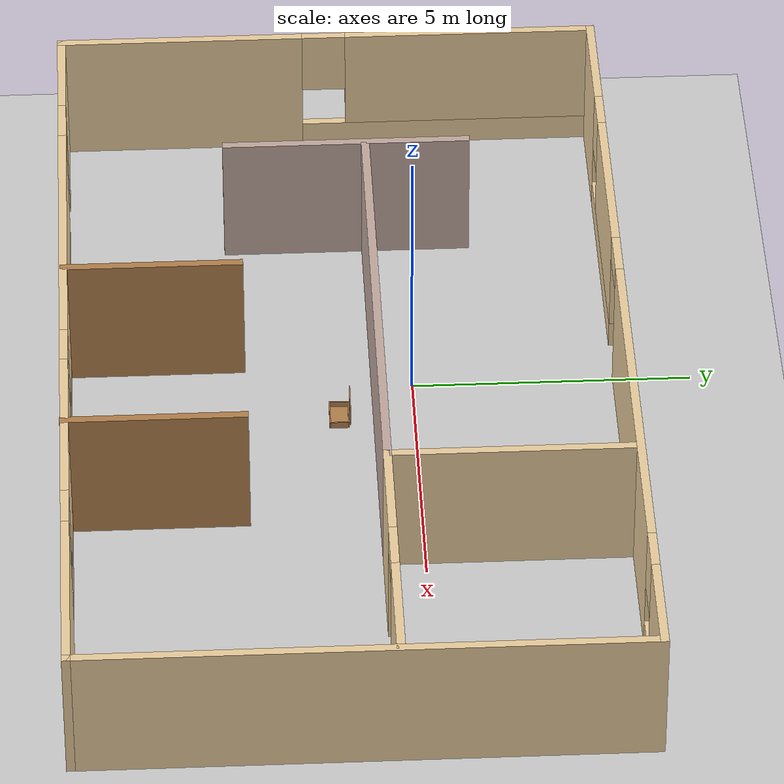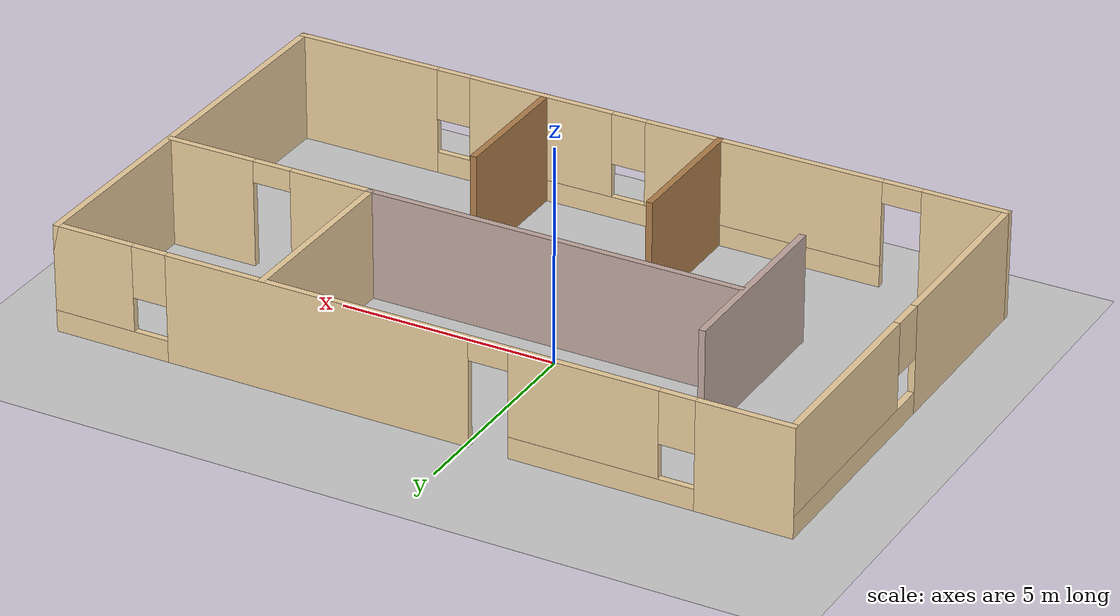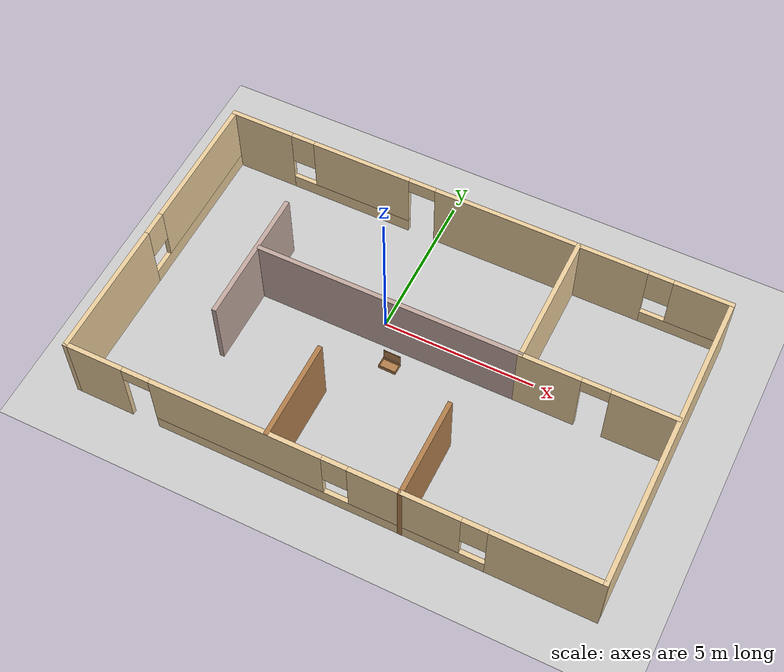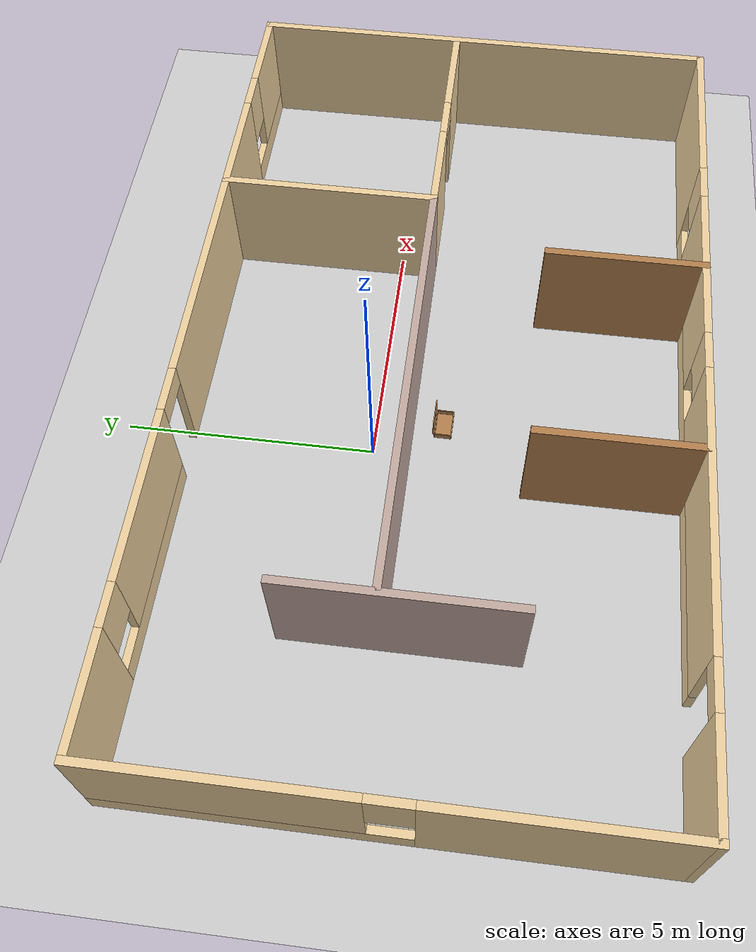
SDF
<sdf version="1.6">
 <world name="default">
  <model name="ground_plane">
   <static>1</static>
   <link name="ground_link">
    <collision name="collision">
     <geometry><plane><normal>0 0 1</normal><size>100 100</size></plane></geometry>
     <surface><friction><ode><mu>100</mu><mu2>50</mu2></ode></friction></surface>
    </collision>
    <visual name="visual">
     <cast_shadows>0</cast_shadows>
     <geometry><plane><normal>0 0 1</normal><size>100 100</size></plane></geometry>
     <material>
      <script><uri>file://media/materials/scripts/gazebo.material</uri><name>Gazebo/Grey</name></script>
     </material>
    </visual>
   </link>
  </model>
  <model name="HomeOffice">
   <pose>1.17907 -1.24904 0 0 -0 0</pose>
   <link name="Wall_0">
    <pose>-8.425 0.002596 0 0 -0 1.5708</pose>
    <visual name="Wall_0_Visual_0">
     <pose>-2.72763 0 1.25 0 -0 0</pose>
     <geometry><box><size>4.54474 0.15 2.5</size></box></geometry>
     <material>
      <script><uri>file://media/materials/scripts/gazebo.material</uri><name>Gazebo/Grey</name></script>
      <ambient>0.921569 0.807843 0.615686 1</ambient>
     </material>
     <meta><layer>0</layer></meta>
    </visual>
    <collision name="Wall_0_Collision_0">
     <geometry><box><size>4.54474 0.15 2.5</size></box></geometry>
     <pose>-2.72763 0 1.25 0 -0 0</pose>
    </collision>
    <visual name="Wall_0_Visual_1">
     <pose>2.27237 0 0.25 0 -0 0</pose>
     <geometry><box><size>5.45526 0.15 0.5</size></box></geometry>
     <material>
      <script><uri>file://media/materials/scripts/gazebo.material</uri><name>Gazebo/Grey</name></script>
      <ambient>0.921569 0.807843 0.615686 1</ambient>
     </material>
     <meta><layer>0</layer></meta>
    </visual>
    <collision name="Wall_0_Collision_1">
     <geometry><box><size>5.45526 0.15 0.5</size></box></geometry>
     <pose>2.27237 0 0.25 0 -0 0</pose>
    </collision>
    <visual name="Wall_0_Visual_2">
     <pose>2.67237 0 1.5 0 -0 0</pose>
     <geometry><box><size>4.65526 0.15 2</size></box></geometry>
     <material>
      <script><uri>file://media/materials/scripts/gazebo.material</uri><name>Gazebo/Grey</name></script>
      <ambient>0.921569 0.807843 0.615686 1</ambient>
     </material>
     <meta><layer>0</layer></meta>
    </visual>
    <collision name="Wall_0_Collision_2">
     <geometry><box><size>4.65526 0.15 2</size></box></geometry>
     <pose>2.67237 0 1.5 0 -0 0</pose>
    </collision>
    <visual name="Wall_0_Visual_3">
     <pose>-0.055255 0 1.9 0 -0 0</pose>
     <geometry><box><size>0.8 0.15 1.2</size></box></geometry>
     <material>
      <script><uri>file://media/materials/scripts/gazebo.material</uri><name>Gazebo/Grey</name></script>
      <ambient>0.921569 0.807843 0.615686 1</ambient>
     </material>
     <meta><layer>0</layer></meta>
    </visual>
    <collision name="Wall_0_Collision_3">
     <geometry><box><size>0.8 0.15 1.2</size></box></geometry>
     <pose>-0.055255 0 1.9 0 -0 0</pose>
    </collision>
   </link>
   <link name="Wall_1">
    <pose>-0 4.9276 0 0 -0 0</pose>
    <visual name="Wall_1_Visual_0">
     <pose>-7.41024 0 1.25 0 -0 0</pose>
     <geometry><box><size>2.17952 0.15 2.5</size></box></geometry>
     <material>
      <script><uri>file://media/materials/scripts/gazebo.material</uri><name>Gazebo/Grey</name></script>
      <ambient>0.921569 0.807843 0.615686 1</ambient>
     </material>
     <meta><layer>0</layer></meta>
    </visual>
    <collision name="Wall_1_Collision_0">
     <geometry><box><size>2.17952 0.15 2.5</size></box></geometry>
     <pose>-7.41024 0 1.25 0 -0 0</pose>
    </collision>
    <visual name="Wall_1_Visual_1">
     <pose>2.26645 0 1.25 0 -0 0</pose>
     <geometry><box><size>7.05766 0.15 2.5</size></box></geometry>
     <material>
      <script><uri>file://media/materials/scripts/gazebo.material</uri><name>Gazebo/Grey</name></script>
      <ambient>0.921569 0.807843 0.615686 1</ambient>
     </material>
     <meta><layer>0</layer></meta>
    </visual>
    <collision name="Wall_1_Collision_1">
     <geometry><box><size>7.05766 0.15 2.5</size></box></geometry>
     <pose>2.26645 0 1.25 0 -0 0</pose>
    </collision>
    <visual name="Wall_1_Visual_2">
     <pose>-4.24143 0 0.25 0 -0 0</pose>
     <geometry><box><size>4.1581 0.15 0.5</size></box></geometry>
     <material>
      <script><uri>file://media/materials/scripts/gazebo.material</uri><name>Gazebo/Grey</name></script>
      <ambient>0.921569 0.807843 0.615686 1</ambient>
     </material>
     <meta><layer>0</layer></meta>
    </visual>
    <collision name="Wall_1_Collision_2">
     <geometry><box><size>4.1581 0.15 0.5</size></box></geometry>
     <pose>-4.24143 0 0.25 0 -0 0</pose>
    </collision>
    <visual name="Wall_1_Visual_3">
     <pose>7.14764 0 0.25 0 -0 0</pose>
     <geometry><box><size>2.70472 0.15 0.5</size></box></geometry>
     <material>
      <script><uri>file://media/materials/scripts/gazebo.material</uri><name>Gazebo/Grey</name></script>
      <ambient>0.921569 0.807843 0.615686 1</ambient>
     </material>
     <meta><layer>0</layer></meta>
    </visual>
    <collision name="Wall_1_Collision_3">
     <geometry><box><size>2.70472 0.15 0.5</size></box></geometry>
     <pose>7.14764 0 0.25 0 -0 0</pose>
    </collision>
    <visual name="Wall_1_Visual_4">
     <pose>-3.84143 0 1.5 0 -0 0</pose>
     <geometry><box><size>3.3581 0.15 2</size></box></geometry>
     <material>
      <script><uri>file://media/materials/scripts/gazebo.material</uri><name>Gazebo/Grey</name></script>
      <ambient>0.921569 0.807843 0.615686 1</ambient>
     </material>
     <meta><layer>0</layer></meta>
    </visual>
    <collision name="Wall_1_Collision_4">
     <geometry><box><size>3.3581 0.15 2</size></box></geometry>
     <pose>-3.84143 0 1.5 0 -0 0</pose>
    </collision>
    <visual name="Wall_1_Visual_5">
     <pose>-3.84143 0 1.5 0 -0 0</pose>
     <geometry><box><size>3.3581 0.15 2</size></box></geometry>
     <material>
      <script><uri>file://media/materials/scripts/gazebo.material</uri><name>Gazebo/Grey</name></script>
      <ambient>0.921569 0.807843 0.615686 1</ambient>
     </material>
     <meta><layer>0</layer></meta>
    </visual>
    <collision name="Wall_1_Collision_5">
     <geometry><box><size>3.3581 0.15 2</size></box></geometry>
     <pose>-3.84143 0 1.5 0 -0 0</pose>
    </collision>
    <visual name="Wall_1_Visual_6">
     <pose>7.54764 0 1.5 0 -0 0</pose>
     <geometry><box><size>1.90472 0.15 2</size></box></geometry>
     <material>
      <script><uri>file://media/materials/scripts/gazebo.material</uri><name>Gazebo/Grey</name></script>
      <ambient>0.921569 0.807843 0.615686 1</ambient>
     </material>
     <meta><layer>0</layer></meta>
    </visual>
    <collision name="Wall_1_Collision_6">
     <geometry><box><size>1.90472 0.15 2</size></box></geometry>
     <pose>7.54764 0 1.5 0 -0 0</pose>
    </collision>
    <visual name="Wall_1_Visual_7">
     <pose>-5.92048 0 1.9 0 -0 0</pose>
     <geometry><box><size>0.8 0.15 1.2</size></box></geometry>
     <material>
      <script><uri>file://media/materials/scripts/gazebo.material</uri><name>Gazebo/Grey</name></script>
      <ambient>0.921569 0.807843 0.615686 1</ambient>
     </material>
     <meta><layer>0</layer></meta>
    </visual>
    <collision name="Wall_1_Collision_7">
     <geometry><box><size>0.8 0.15 1.2</size></box></geometry>
     <pose>-5.92048 0 1.9 0 -0 0</pose>
    </collision>
    <visual name="Wall_1_Visual_8">
     <pose>6.19528 0 1.9 0 -0 0</pose>
     <geometry><box><size>0.8 0.15 1.2</size></box></geometry>
     <material>
      <script><uri>file://media/materials/scripts/gazebo.material</uri><name>Gazebo/Grey</name></script>
      <ambient>0.921569 0.807843 0.615686 1</ambient>
     </material>
     <meta><layer>0</layer></meta>
    </visual>
    <collision name="Wall_1_Collision_8">
     <geometry><box><size>0.8 0.15 1.2</size></box></geometry>
     <pose>6.19528 0 1.9 0 -0 0</pose>
    </collision>
    <visual name="Wall_1_Visual_9">
     <pose>-1.71238 0 2.25 0 -0 0</pose>
     <geometry><box><size>0.9 0.15 0.5</size></box></geometry>
     <material>
      <script><uri>file://media/materials/scripts/gazebo.material</uri><name>Gazebo/Grey</name></script>
      <ambient>0.921569 0.807843 0.615686 1</ambient>
     </material>
     <meta><layer>0</layer></meta>
    </visual>
    <collision name="Wall_1_Collision_9">
     <geometry><box><size>0.9 0.15 0.5</size></box></geometry>
     <pose>-1.71238 0 2.25 0 -0 0</pose>
    </collision>
    <visual name="Wall_1_Visual_10">
     <pose>-1.71238 0 2.25 0 -0 0</pose>
     <geometry><box><size>0.9 0.15 0.5</size></box></geometry>
     <material>
      <script><uri>file://media/materials/scripts/gazebo.material</uri><name>Gazebo/Grey</name></script>
      <ambient>0.921569 0.807843 0.615686 1</ambient>
     </material>
     <meta><layer>0</layer></meta>
    </visual>
    <collision name="Wall_1_Collision_10">
     <geometry><box><size>0.9 0.15 0.5</size></box></geometry>
     <pose>-1.71238 0 2.25 0 -0 0</pose>
    </collision>
   </link>
   <link name="Wall_11">
    <pose>5.95103 0.586614 0 0 -0 0</pose>
    <visual name="Wall_11_Visual_0">
     <pose>-1.50527 0 1.25 0 -0 0</pose>
     <geometry><box><size>1.98945 0.15 2.5</size></box></geometry>
     <material>
      <script><uri>file://media/materials/scripts/gazebo.material</uri><name>Gazebo/Grey</name></script>
      <ambient>0.921569 0.807843 0.615686 1</ambient>
     </material>
     <meta><layer>0</layer></meta>
    </visual>
    <collision name="Wall_11_Collision_0">
     <geometry><box><size>1.98945 0.15 2.5</size></box></geometry>
     <pose>-1.50527 0 1.25 0 -0 0</pose>
    </collision>
    <visual name="Wall_11_Visual_1">
     <pose>1.44473 0 1.25 0 -0 0</pose>
     <geometry><box><size>2.11055 0.15 2.5</size></box></geometry>
     <material>
      <script><uri>file://media/materials/scripts/gazebo.material</uri><name>Gazebo/Grey</name></script>
      <ambient>0.921569 0.807843 0.615686 1</ambient>
     </material>
     <meta><layer>0</layer></meta>
    </visual>
    <collision name="Wall_11_Collision_1">
     <geometry><box><size>2.11055 0.15 2.5</size></box></geometry>
     <pose>1.44473 0 1.25 0 -0 0</pose>
    </collision>
    <visual name="Wall_11_Visual_2">
     <pose>-0.060545 0 2.25 0 -0 0</pose>
     <geometry><box><size>0.9 0.15 0.5</size></box></geometry>
     <material>
      <script><uri>file://media/materials/scripts/gazebo.material</uri><name>Gazebo/Grey</name></script>
      <ambient>0.921569 0.807843 0.615686 1</ambient>
     </material>
     <meta><layer>0</layer></meta>
    </visual>
    <collision name="Wall_11_Collision_2">
     <geometry><box><size>0.9 0.15 0.5</size></box></geometry>
     <pose>-0.060545 0 2.25 0 -0 0</pose>
    </collision>
   </link>
   <link name="Wall_15">
    <collision name="Wall_15_Collision">
     <geometry><box><size>3.25 0.15 2.5</size></box></geometry>
     <pose>0 0 1.25 0 -0 0</pose>
    </collision>
    <visual name="Wall_15_Visual">
     <pose>0 0 1.25 0 -0 0</pose>
     <geometry><box><size>3.25 0.15 2.5</size></box></geometry>
     <material>
      <script><uri>file://media/materials/scripts/gazebo.material</uri><name>Gazebo/Wood</name></script>
      <ambient>1 1 1 1</ambient>
     </material>
     <meta><layer>0</layer></meta>
    </visual>
    <pose>2.3971 -3.3776 0 0 -0 1.5708</pose>
   </link>
   <link name="Wall_17">
    <collision name="Wall_17_Collision">
     <geometry><box><size>3.25 0.15 2.5</size></box></geometry>
     <pose>0 0 1.25 0 -0 0</pose>
    </collision>
    <visual name="Wall_17_Visual">
     <pose>0 0 1.25 0 -0 0</pose>
     <geometry><box><size>3.25 0.15 2.5</size></box></geometry>
     <material>
      <script><uri>file://media/materials/scripts/gazebo.material</uri><name>Gazebo/Wood</name></script>
      <ambient>1 1 1 1</ambient>
     </material>
     <meta><layer>0</layer></meta>
    </visual>
    <pose>-1.77936 -3.35562 0 0 -0 1.5708</pose>
   </link>
   <link name="Wall_2">
    <collision name="Wall_2_Collision">
     <geometry><box><size>10 0.15 2.5</size></box></geometry>
     <pose>0 0 1.25 0 -0 0</pose>
    </collision>
    <visual name="Wall_2_Visual">
     <pose>0 0 1.25 0 -0 0</pose>
     <geometry><box><size>10 0.15 2.5</size></box></geometry>
     <material>
      <script><uri>file://media/materials/scripts/gazebo.material</uri><name>Gazebo/Grey</name></script>
      <ambient>0.921569 0.807843 0.615686 1</ambient>
     </material>
     <meta><layer>0</layer></meta>
    </visual>
    <pose>8.425 0.002596 0 0 -0 -1.5708</pose>
   </link>
   <link name="Wall_3">
    <pose>-0 -4.9224 0 0 -0 3.14159</pose>
    <visual name="Wall_3_Visual_0">
     <pose>-6.76663 0 1.25 0 -0 0</pose>
     <geometry><box><size>3.46674 0.15 2.5</size></box></geometry>
     <material>
      <script><uri>file://media/materials/scripts/gazebo.material</uri><name>Gazebo/Grey</name></script>
      <ambient>0.921569 0.807843 0.615686 1</ambient>
     </material>
     <meta><layer>0</layer></meta>
    </visual>
    <collision name="Wall_3_Collision_0">
     <geometry><box><size>3.46674 0.15 2.5</size></box></geometry>
     <pose>-6.76663 0 1.25 0 -0 0</pose>
    </collision>
    <visual name="Wall_3_Visual_1">
     <pose>7.5069 0 1.25 0 -0 0</pose>
     <geometry><box><size>1.98621 0.15 2.5</size></box></geometry>
     <material>
      <script><uri>file://media/materials/scripts/gazebo.material</uri><name>Gazebo/Grey</name></script>
      <ambient>0.921569 0.807843 0.615686 1</ambient>
     </material>
     <meta><layer>0</layer></meta>
    </visual>
    <collision name="Wall_3_Collision_1">
     <geometry><box><size>1.98621 0.15 2.5</size></box></geometry>
     <pose>7.5069 0 1.25 0 -0 0</pose>
    </collision>
    <visual name="Wall_3_Visual_2">
     <pose>0.290267 0 0.25 0 -0 0</pose>
     <geometry><box><size>10.6471 0.15 0.5</size></box></geometry>
     <material>
      <script><uri>file://media/materials/scripts/gazebo.material</uri><name>Gazebo/Grey</name></script>
      <ambient>0.921569 0.807843 0.615686 1</ambient>
     </material>
     <meta><layer>0</layer></meta>
    </visual>
    <collision name="Wall_3_Collision_2">
     <geometry><box><size>10.6471 0.15 0.5</size></box></geometry>
     <pose>0.290267 0 0.25 0 -0 0</pose>
    </collision>
    <visual name="Wall_3_Visual_3">
     <pose>-2.49467 0 1.5 0 -0 0</pose>
     <geometry><box><size>3.47717 0.15 2</size></box></geometry>
     <material>
      <script><uri>file://media/materials/scripts/gazebo.material</uri><name>Gazebo/Grey</name></script>
      <ambient>0.921569 0.807843 0.615686 1</ambient>
     </material>
     <meta><layer>0</layer></meta>
    </visual>
    <collision name="Wall_3_Collision_3">
     <geometry><box><size>3.47717 0.15 2</size></box></geometry>
     <pose>-2.49467 0 1.5 0 -0 0</pose>
    </collision>
    <visual name="Wall_3_Visual_4">
     <pose>2.82885 0 1.5 0 -0 0</pose>
     <geometry><box><size>5.56988 0.15 2</size></box></geometry>
     <material>
      <script><uri>file://media/materials/scripts/gazebo.material</uri><name>Gazebo/Grey</name></script>
      <ambient>0.921569 0.807843 0.615686 1</ambient>
     </material>
     <meta><layer>0</layer></meta>
    </visual>
    <collision name="Wall_3_Collision_4">
     <geometry><box><size>5.56988 0.15 2</size></box></geometry>
     <pose>2.82885 0 1.5 0 -0 0</pose>
    </collision>
    <visual name="Wall_3_Visual_5">
     <pose>-4.63326 0 1.9 0 -0 0</pose>
     <geometry><box><size>0.8 0.15 1.2</size></box></geometry>
     <material>
      <script><uri>file://media/materials/scripts/gazebo.material</uri><name>Gazebo/Grey</name></script>
      <ambient>0.921569 0.807843 0.615686 1</ambient>
     </material>
     <meta><layer>0</layer></meta>
    </visual>
    <collision name="Wall_3_Collision_5">
     <geometry><box><size>0.8 0.15 1.2</size></box></geometry>
     <pose>-4.63326 0 1.9 0 -0 0</pose>
    </collision>
    <visual name="Wall_3_Visual_6">
     <pose>-0.356089 0 1.9 0 -0 0</pose>
     <geometry><box><size>0.8 0.15 1.2</size></box></geometry>
     <material>
      <script><uri>file://media/materials/scripts/gazebo.material</uri><name>Gazebo/Grey</name></script>
      <ambient>0.921569 0.807843 0.615686 1</ambient>
     </material>
     <meta><layer>0</layer></meta>
    </visual>
    <collision name="Wall_3_Collision_6">
     <geometry><box><size>0.8 0.15 1.2</size></box></geometry>
     <pose>-0.356089 0 1.9 0 -0 0</pose>
    </collision>
    <visual name="Wall_3_Visual_7">
     <pose>6.06379 0 2.25 0 -0 0</pose>
     <geometry><box><size>0.9 0.15 0.5</size></box></geometry>
     <material>
      <script><uri>file://media/materials/scripts/gazebo.material</uri><name>Gazebo/Grey</name></script>
      <ambient>0.921569 0.807843 0.615686 1</ambient>
     </material>
     <meta><layer>0</layer></meta>
    </visual>
    <collision name="Wall_3_Collision_7">
     <geometry><box><size>0.9 0.15 0.5</size></box></geometry>
     <pose>6.06379 0 2.25 0 -0 0</pose>
    </collision>
   </link>
   <link name="Wall_5">
    <collision name="Wall_5_Collision">
     <geometry><box><size>4.5 0.15 2.5</size></box></geometry>
     <pose>0 0 1.25 0 -0 0</pose>
    </collision>
    <visual name="Wall_5_Visual">
     <pose>0 0 1.25 0 -0 0</pose>
     <geometry><box><size>4.5 0.15 2.5</size></box></geometry>
     <material>
      <script><uri>file://media/materials/scripts/gazebo.material</uri><name>Gazebo/Grey</name></script>
      <ambient>0.760784 0.662745 0.627451 1</ambient>
     </material>
     <meta><layer>0</layer></meta>
    </visual>
    <pose>-5.17438 0.236386 0 0 -0 -1.5708</pose>
   </link>
   <link name="Wall_8">
    <collision name="Wall_8_Collision">
     <geometry><box><size>8.75 0.15 2.5</size></box></geometry>
     <pose>0 0 1.25 0 -0 0</pose>
    </collision>
    <visual name="Wall_8_Visual">
     <pose>0 0 1.25 0 -0 0</pose>
     <geometry><box><size>8.75 0.15 2.5</size></box></geometry>
     <material>
      <script><uri>file://media/materials/scripts/gazebo.material</uri><name>Gazebo/Grey</name></script>
      <ambient>0.760784 0.662745 0.627451 1</ambient>
     </material>
     <meta><layer>0</layer></meta>
    </visual>
    <pose>-0.773966 0.586614 0 0 -0 0</pose>
   </link>
   <link name="Wall_9">
    <collision name="Wall_9_Collision">
     <geometry><box><size>4.48714 0.15 2.5</size></box></geometry>
     <pose>0 0 1.25 0 -0 0</pose>
    </collision>
    <visual name="Wall_9_Visual">
     <pose>0 0 1.25 0 -0 0</pose>
     <geometry><box><size>4.48714 0.15 2.5</size></box></geometry>
     <material>
      <script><uri>file://media/materials/scripts/gazebo.material</uri><name>Gazebo/Grey</name></script>
      <ambient>0.921569 0.807843 0.615686 1</ambient>
     </material>
     <meta><layer>0</layer></meta>
    </visual>
    <pose>3.52603 2.75519 0 0 -0 1.5708</pose>
   </link>
   <static>1</static>
  </model>
  <model name="wooden_case_0">
   <link name="base">
    <pose>0 0 0.024 0 -0 0</pose>
    <inertial>
     <pose>-0.022184 0 0.171592 0 -0 0</pose>
     <mass>3.96264</mass>
     <inertia>
      <ixx>0.213536</ixx>
      <ixy>0</ixy>
      <ixz>0.000779377</ixz>
      <iyy>0.0708943</iyy>
      <iyz>0</iyz>
      <izz>0.154604</izz>
     </inertia>
    </inertial>
    <collision name="collision_back">
     <pose>-0.053975 0 0.1778 0 -0 0</pose>
     <geometry><box><size>0.01905 0.5461 0.3175</size></box></geometry>
     <surface>
      <contact>
       <poissons_ratio>0.347</poissons_ratio>
       <elastic_modulus>8.8e+09</elastic_modulus>
       <ode><kp>100000</kp><kd>100</kd><max_vel>100</max_vel><min_depth>0.001</min_depth></ode>
      </contact>
      <friction>
       <torsional>
        <coefficient>1</coefficient>
        <use_patch_radius>0</use_patch_radius>
        <surface_radius>0.01</surface_radius>
       </torsional>
      </friction>
     </surface>
    </collision>
    <visual name="visual_back">
     <pose>-0.053975 0 0.1778 0 -0 0</pose>
     <geometry><box><size>0.01905 0.5461 0.3175</size></box></geometry>
     <material>
      <script><uri>file://media/materials/scripts/gazebo.material</uri><name>Gazebo/Wood</name></script>
     </material>
    </visual>
    <collision name="collision_bottom">
     <pose>0 0 0.009525 0 -0 0</pose>
     <geometry><box><size>0.127 0.5842 0.01905</size></box></geometry>
     <surface>
      <contact>
       <poissons_ratio>0.347</poissons_ratio>
       <elastic_modulus>8.8e+09</elastic_modulus>
       <ode><kp>100000</kp><kd>100</kd><max_vel>100</max_vel><min_depth>0.001</min_depth></ode>
      </contact>
      <friction>
       <torsional>
        <coefficient>1</coefficient>
        <use_patch_radius>0</use_patch_radius>
        <surface_radius>0.01</surface_radius>
       </torsional>
      </friction>
     </surface>
    </collision>
    <visual name="visual_bottom">
     <pose>0 0 0.009525 0 -0 0</pose>
     <geometry><box><size>0.127 0.5842 0.01905</size></box></geometry>
     <material>
      <script><uri>file://media/materials/scripts/gazebo.material</uri><name>Gazebo/Wood</name></script>
     </material>
    </visual>
    <collision name="collision_top">
     <pose>0 0 0.346075 0 -0 0</pose>
     <geometry><box><size>0.127 0.5842 0.01905</size></box></geometry>
     <surface>
      <contact>
       <poissons_ratio>0.347</poissons_ratio>
       <elastic_modulus>8.8e+09</elastic_modulus>
       <ode><kp>100000</kp><kd>100</kd><max_vel>100</max_vel><min_depth>0.001</min_depth></ode>
      </contact>
      <friction>
       <torsional>
        <coefficient>1</coefficient>
        <use_patch_radius>0</use_patch_radius>
        <surface_radius>0.01</surface_radius>
       </torsional>
      </friction>
     </surface>
    </collision>
    <visual name="visual_top">
     <pose>0 0 0.346075 0 -0 0</pose>
     <geometry><box><size>0.127 0.5842 0.01905</size></box></geometry>
     <material>
      <script><uri>file://media/materials/scripts/gazebo.material</uri><name>Gazebo/Wood</name></script>
     </material>
    </visual>
    <collision name="collision_left">
     <pose>0 -0.282575 0.1778 0 -0 0</pose>
     <geometry><box><size>0.127 0.01905 0.3175</size></box></geometry>
     <surface>
      <contact>
       <poissons_ratio>0.347</poissons_ratio>
       <elastic_modulus>8.8e+09</elastic_modulus>
       <ode><kp>100000</kp><kd>100</kd><max_vel>100</max_vel><min_depth>0.001</min_depth></ode>
      </contact>
      <friction>
       <torsional>
        <coefficient>1</coefficient>
        <use_patch_radius>0</use_patch_radius>
        <surface_radius>0.01</surface_radius>
       </torsional>
      </friction>
     </surface>
    </collision>
    <visual name="visual_left">
     <pose>0 -0.282575 0.1778 0 -0 0</pose>
     <geometry><box><size>0.127 0.01905 0.3175</size></box></geometry>
     <material>
      <script><uri>file://media/materials/scripts/gazebo.material</uri><name>Gazebo/Wood</name></script>
     </material>
    </visual>
    <collision name="collision_right">
     <pose>0 0.282575 0.1778 0 -0 0</pose>
     <geometry><box><size>0.127 0.01905 0.3175</size></box></geometry>
     <surface>
      <contact>
       <poissons_ratio>0.347</poissons_ratio>
       <elastic_modulus>8.8e+09</elastic_modulus>
       <ode><kp>100000</kp><kd>100</kd><max_vel>100</max_vel><min_depth>0.001</min_depth></ode>
      </contact>
      <friction>
       <torsional>
        <coefficient>1</coefficient>
        <use_patch_radius>0</use_patch_radius>
        <surface_radius>0.01</surface_radius>
       </torsional>
      </friction>
     </surface>
    </collision>
    <visual name="visual_right">
     <pose>0 0.282575 0.1778 0 -0 0</pose>
     <geometry><box><size>0.127 0.01905 0.3175</size></box></geometry>
     <material>
      <script><uri>file://media/materials/scripts/gazebo.material</uri><name>Gazebo/Wood</name></script>
     </material>
    </visual>
    <collision name="collision_block_left">
     <pose>0.0095 -0.2151 -0.012 0 -0 0</pose>
     <geometry><box><size>0.108 0.05 0.024</size></box></geometry>
     <surface>
      <contact>
       <poissons_ratio>0.347</poissons_ratio>
       <elastic_modulus>8.8e+09</elastic_modulus>
       <ode><kp>100000</kp><kd>100</kd><max_vel>100</max_vel><min_depth>0.001</min_depth></ode>
      </contact>
      <friction>
       <torsional>
        <coefficient>1</coefficient>
        <use_patch_radius>0</use_patch_radius>
        <surface_radius>0.01</surface_radius>
       </torsional>
      </friction>
     </surface>
    </collision>
    <visual name="visual_block_left">
     <pose>0.0095 -0.2151 -0.012 0 -0 0</pose>
     <geometry><box><size>0.108 0.05 0.024</size></box></geometry>
     <material>
      <script><uri>file://media/materials/scripts/gazebo.material</uri><name>Gazebo/Wood</name></script>
     </material>
    </visual>
    <collision name="collision_block_right">
     <pose>0.0095 0.2151 -0.012 0 -0 0</pose>
     <geometry><box><size>0.108 0.05 0.024</size></box></geometry>
     <surface>
      <contact>
       <poissons_ratio>0.347</poissons_ratio>
       <elastic_modulus>8.8e+09</elastic_modulus>
       <ode><kp>100000</kp><kd>100</kd><max_vel>100</max_vel><min_depth>0.001</min_depth></ode>
      </contact>
      <friction>
       <torsional>
        <coefficient>1</coefficient>
        <use_patch_radius>0</use_patch_radius>
        <surface_radius>0.01</surface_radius>
       </torsional>
      </friction>
     </surface>
    </collision>
    <visual name="visual_block_right">
     <pose>0.0095 0.2151 -0.012 0 -0 0</pose>
     <geometry><box><size>0.108 0.05 0.024</size></box></geometry>
     <material>
      <script><uri>file://media/materials/scripts/gazebo.material</uri><name>Gazebo/Wood</name></script>
     </material>
    </visual>
   </link>
   <link name="lid">
    <pose>0.243775 0 0.009525 0 -0 0</pose>
    <inertial>
     <mass>1.97874</mass>
     <inertia>
      <ixx>0.0563367</ixx>
      <ixy>0</ixy>
      <ixz>0</ixz>
      <iyy>0.020911</iyy>
      <iyz>0</iyz>
      <izz>0.0771281</izz>
     </inertia>
    </inertial>
    <collision name="collision">
     <geometry><box><size>0.3556 0.5842 0.01905</size></box></geometry>
     <surface>
      <contact>
       <poissons_ratio>0.347</poissons_ratio>
       <elastic_modulus>8.8e+09</elastic_modulus>
       <ode><kp>100000</kp><kd>100</kd><max_vel>100</max_vel><min_depth>0.001</min_depth></ode>
      </contact>
      <friction>
       <torsional>
        <coefficient>1</coefficient>
        <use_patch_radius>0</use_patch_radius>
        <surface_radius>0.01</surface_radius>
       </torsional>
      </friction>
     </surface>
    </collision>
    <visual name="visual">
     <geometry><box><size>0.3556 0.5842 0.01905</size></box></geometry>
     <material>
      <script><uri>file://media/materials/scripts/gazebo.material</uri><name>Gazebo/Wood</name></script>
     </material>
    </visual>
    <visual name="tee_nut_1">
     <pose>0.122 -0.216 0 0 -0 0</pose>
     <geometry><cylinder><radius>0.00635</radius><length>0.0192405</length></cylinder></geometry>
     <material>
      <script><uri>file://media/materials/scripts/gazebo.material</uri><name>Gazebo/Grey</name></script>
     </material>
    </visual>
    <visual name="tee_nut_2">
     <pose>0.122 -0.088 0 0 -0 0</pose>
     <geometry><cylinder><radius>0.00635</radius><length>0.0192405</length></cylinder></geometry>
     <material>
      <script><uri>file://media/materials/scripts/gazebo.material</uri><name>Gazebo/Grey</name></script>
     </material>
    </visual>
    <visual name="tee_nut_3">
     <pose>0.122 0.088 0 0 -0 0</pose>
     <geometry><cylinder><radius>0.00635</radius><length>0.0192405</length></cylinder></geometry>
     <material>
      <script><uri>file://media/materials/scripts/gazebo.material</uri><name>Gazebo/Grey</name></script>
     </material>
    </visual>
    <visual name="tee_nut_4">
     <pose>0.122 0.216 0 0 -0 0</pose>
     <geometry><cylinder><radius>0.00635</radius><length>0.0192405</length></cylinder></geometry>
     <material>
      <script><uri>file://media/materials/scripts/gazebo.material</uri><name>Gazebo/Grey</name></script>
     </material>
    </visual>
   </link>
   <joint name="lid_hinge" type="revolute">
    <pose>-0.1778 0 0.01905 0 -0 0</pose>
    <parent>base</parent>
    <child>lid</child>
    <axis>
     <xyz>0 1 0</xyz>
     <limit><upper>0.523599</upper><lower>-1.5708</lower></limit>
     <use_parent_model_frame>0</use_parent_model_frame>
     <dynamics><spring_reference>0</spring_reference><spring_stiffness>0</spring_stiffness></dynamics>
    </axis>
   </joint>
   <pose>0.800645 -1.13999 0.062449 -0 -1.57069 1.55414</pose>
  </model>
 </world>
</sdf>
